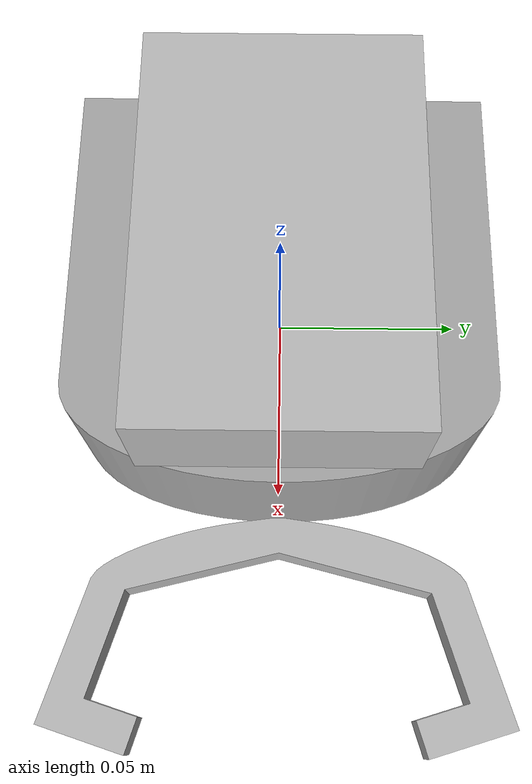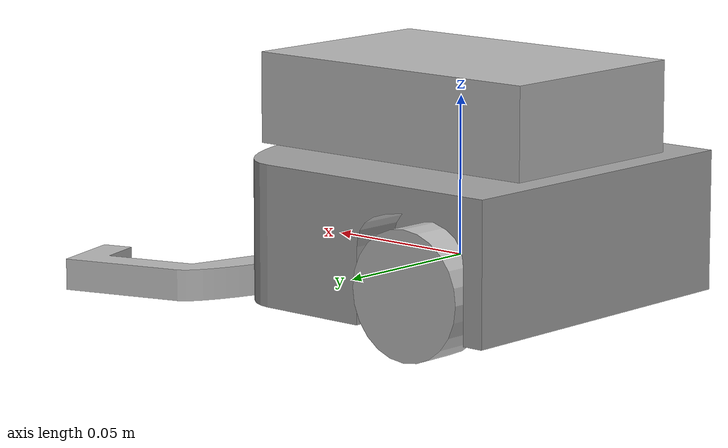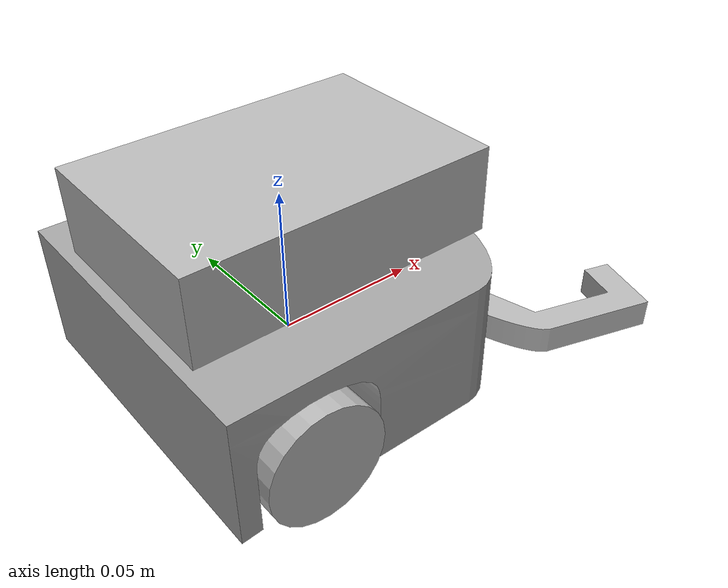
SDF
<?xml version='1.0'?>
<sdf version='1.4'>
  <model name="thymio">
    <pose>0 0 0 0 0 0</pose>
    <static>false</static>
    <link name='chassis'>
      <pose>0 0 .01 0 0 0</pose>
      <inertial>
        <mass>0.270</mass>
        <inertia>
          <ixx>1.272320e-04</ixx>
          <ixy>-1.138297e-06</ixy>
          <ixz>-1.762013e-21</ixz>
          <iyy>1.260759e-04</iyy>
          <iyz>-2.367320e-23</iyz>
          <izz>2.183003e-04</izz>
        </inertia>
      </inertial>
      <self_collide>True</self_collide>

      <collision name='collision'>
        <pose>0 0 0 0 0 0</pose>
        <geometry>
          <mesh>
            <uri>model://thymio/meshes/thymio.dae</uri>
          </mesh>
        </geometry>
      </collision>

      <visual name='visual'>
        <pose>0 0 0 0 0 0</pose>
        <geometry>
          <mesh>
            <uri>model://thymio/meshes/thymio.dae</uri>
          </mesh>
        </geometry>
      </visual>

      <collision name='caster_collision'>
        <pose>0.045 0 -0.02 0 0 0</pose>
          <geometry>
            <sphere>
              <radius>.01</radius>
            </sphere>
          </geometry>

          <surface>
            <friction>
              <ode>
                <mu>0</mu>
                <mu2>0</mu2>
                <slip1>1.0</slip1>
                <slip2>1.0</slip2>
              </ode>
            </friction>
          </surface>
      </collision>

      <visual name='caster_visual'>
        <pose>0.045 0 -0.02 0 0 0</pose>
          <geometry>
            <sphere>
              <radius>.01</radius>
            </sphere>
          </geometry>
      </visual>

      <collision name='gripper_collision'>
        <pose>0.045 0.085 -0.022 0 0 3.14</pose>
        <geometry>
          <mesh>
            <uri>model://thymio/meshes/gripper.dae</uri>
            <scale>0.1 0.1 0.1</scale>
          </mesh>
        </geometry>
      </collision>

      <visual name='gripper_visual'>
        <pose>0.045 0.085 -0.022 0 0 3.14</pose>
          <geometry>
            <mesh>
              <uri>model://thymio/meshes/gripper.dae</uri>
              <scale>0.1 0.1 0.1</scale>
            </mesh>
          </geometry>
      </visual>

      <collision name='reapberry_visual'>
        <pose>0 0 0.038 0 0 0</pose>
          <geometry>
            <mesh>
              <uri>model://thymio/meshes/raspberry_case.dae</uri>
              <scale>0.11 0.11 0.11</scale>
            </mesh>
          </geometry>
      </collision>

      <visual name='raspberry_visual'>
        <pose>0 0 0.038 0 0 0</pose>
          <geometry>
            <mesh>
              <uri>model://thymio/meshes/raspberry_case.dae</uri>
              <scale>0.11 0.11 0.11</scale>
            </mesh>
          </geometry>
      </visual>

    </link>

    <link name="left_wheel">

      <pose>-0.027 0.05 0 0 1.5707 1.5707</pose>
      <collision name="collision">
        <geometry>
          <cylinder>
            <radius>.02</radius>
            <length>.015</length>
          </cylinder>
        </geometry>
      </collision>

      <visual name="visual">
        <geometry>
          <cylinder>
            <radius>.02</radius>
            <length>.015</length>
          </cylinder>
        </geometry>
      </visual>

    </link>

    <link name="right_wheel">
      <pose>-0.027 -0.05 0 0 1.5707 1.5707</pose>
      <collision name="collision">
        <geometry>
          <cylinder>
            <radius>.02</radius>
            <length>.015</length>
          </cylinder>
        </geometry>
      </collision>

      <visual name="visual">
        <geometry>
          <cylinder>
            <radius>.02</radius>
            <length>.015</length>
          </cylinder>
        </geometry>
      </visual>

    </link>

    <joint type="revolute" name="left_wheel_hinge">
      <pose>0 0 -0.04 0 0 0</pose>
      <child>left_wheel</child>
      <parent>chassis</parent>
      <axis>
        <xyz>0 0 1</xyz>
        <use_parent_model_frame>0</use_parent_model_frame>
          <limit>
            <effort>3.924000e-01</effort>
            <velocity>5.235988e+00</velocity>
          </limit>
      </axis>
    </joint>

    <joint type="revolute" name="right_wheel_hinge">
      <pose>0 0 0.04 0 3.14 0</pose>
      <child>right_wheel</child>
      <parent>chassis</parent>
      <axis>
        <xyz>0 0 1</xyz>
        <use_parent_model_frame>0</use_parent_model_frame>
        <limit>
          <effort>3.924000e-01</effort>
          <velocity>5.235988e+00</velocity>
        </limit>
      </axis>
    </joint>

    <link name="laser_front_link">
      <pose>0.045 0 0 0 0 0</pose>
      <sensor name="laser_front" type="ray">
      <ray>
       <scan>
         <horizontal>
           <samples>640</samples>
           <resolution>1</resolution>
           <min_angle>-0.011111</min_angle>
           <max_angle>0.011111</max_angle>

         </horizontal>
       </scan>
       <range>
         <min>0.08</min>
         <max>10</max>
         <resolution>0.01</resolution>
       </range>
      </ray>
      <visualize>true</visualize>
      </sensor>
    </link>

    <joint name="laser_front_joint" type="fixed">
      <child>laser_front_link</child>
      <parent>chassis</parent>
    </joint>

    <link name="laser_front_right_link">
      <pose>0.045 -0.015 0 0 0 -0.2617994</pose>
      <sensor name="laser_front_right" type="ray">
      <ray>
       <scan>
         <horizontal>
           <samples>640</samples>
           <resolution>1</resolution>
           <min_angle>-0.011111</min_angle>
           <max_angle>0.011111</max_angle>

         </horizontal>
       </scan>
       <range>
         <min>0.08</min>
         <max>10</max>
         <resolution>0.01</resolution>
       </range>
      </ray>
      <visualize>true</visualize>
      </sensor>
    </link>

    <joint name="laser_front_right_joint" type="fixed">
      <child>laser_front_right_link</child>
      <parent>chassis</parent>
    </joint>

    <link name="laser_front_left_link">
      <pose>0.045 0.015 0 0 0 0.2617994</pose>
      <sensor name="laser_front_left" type="ray">
      <ray>
       <scan>
         <horizontal>
           <samples>640</samples>
           <resolution>1</resolution>
           <min_angle>-0.011111</min_angle>
           <max_angle>0.011111</max_angle>

         </horizontal>
       </scan>
       <range>
         <min>0.08</min>
         <max>10</max>
         <resolution>0.01</resolution>
       </range>
      </ray>
      <visualize>true</visualize>
      </sensor>
    </link>

    <joint name="laser_front_left_joint" type="fixed">
      <child>laser_front_left_link</child>
      <parent>chassis</parent>
    </joint>

    <link name="laser_front_right_far_link">
      <pose>0.045 -0.045 0 0 0 -0.5235988</pose>
      <sensor name="laser_front_right_far" type="ray">
      <ray>
       <scan>
         <horizontal>
           <samples>640</samples>
           <resolution>1</resolution>
           <min_angle>-0.011111</min_angle>
           <max_angle>0.011111</max_angle>

         </horizontal>
       </scan>
       <range>
         <min>0.08</min>
         <max>10</max>
         <resolution>0.01</resolution>
       </range>
      </ray>
      <visualize>true</visualize>
      </sensor>
    </link>

    <joint name="laser_front_right_far_joint" type="fixed">
      <child>laser_front_right_far_link</child>
      <parent>chassis</parent>
    </joint>

    <link name="laser_front_left_far_link">
      <pose>0.045 0.045 0 0 0 0.5235988</pose>
      <sensor name="laser_front_left_far" type="ray">
      <ray>
       <scan>
         <horizontal>
           <samples>640</samples>
           <resolution>1</resolution>
           <min_angle>-0.011111</min_angle>
           <max_angle>0.011111</max_angle>

         </horizontal>
       </scan>
       <range>
         <min>0.08</min>
         <max>10</max>
         <resolution>0.01</resolution>
       </range>
      </ray>
      <visualize>true</visualize>
      </sensor>
    </link>

    <joint name="laser_front_left_far_joint" type="fixed">
      <child>laser_front_left_far_link</child>
      <parent>chassis</parent>
    </joint>

    <link name="laser_back_right_link">
      <pose>-0.045 -0.045 0 0 0 3.14</pose>
      <sensor name="laser_back_right" type="ray">
      <ray>
       <scan>
         <horizontal>
           <samples>640</samples>
           <resolution>1</resolution>
           <min_angle>-0.011111</min_angle>
           <max_angle>0.011111</max_angle>

         </horizontal>
       </scan>
       <range>
         <min>0.08</min>
         <max>10</max>
         <resolution>0.01</resolution>
       </range>
      </ray>
      <visualize>true</visualize>
      </sensor>
    </link>

    <joint name="laser_back_right_joint" type="fixed">
      <child>laser_back_right_link</child>
      <parent>chassis</parent>
    </joint>

    <link name="laser_back_left_link">
      <pose>-0.045 0.045 0 0 0 3.14</pose>
      <sensor name="laser_back_left" type="ray">
      <ray>
       <scan>
         <horizontal>
           <samples>640</samples>
           <resolution>1</resolution>
           <min_angle>-0.011111</min_angle>
           <max_angle>0.011111</max_angle>

         </horizontal>
       </scan>
       <range>
         <min>0.08</min>
         <max>10</max>
         <resolution>0.01</resolution>
       </range>
      </ray>
      <visualize>true</visualize>
      </sensor>
    </link>

    <joint name="laser_back_left_joint" type="fixed">
      <child>laser_back_left_link</child>
      <parent>chassis</parent>
    </joint>

    <plugin name="robot_controller" filename="libRobotControlPlugin.so">
      <rv:robot_config xmlns:rv="https://github.com/ElteHupkes/revolve">
        <rv:update_rate>8.000000e+00</rv:update_rate>

        <rv:brain></rv:brain>
        <rv:motor joint="left_wheel_hinge" type="velocity" max_velocity="5.235988e+00"  min_velocity="-5.235988e+00" id="module3__rotate" part_id="module3"></rv:motor>
        <rv:motor joint="right_wheel_hinge" type="velocity" max_velocity="5.235988e+00"  min_velocity="-5.235988e+00" id="module4__rotate" part_id="module4"></rv:motor>
      </rv:robot_config>
    </plugin>

  </model>
</sdf>
